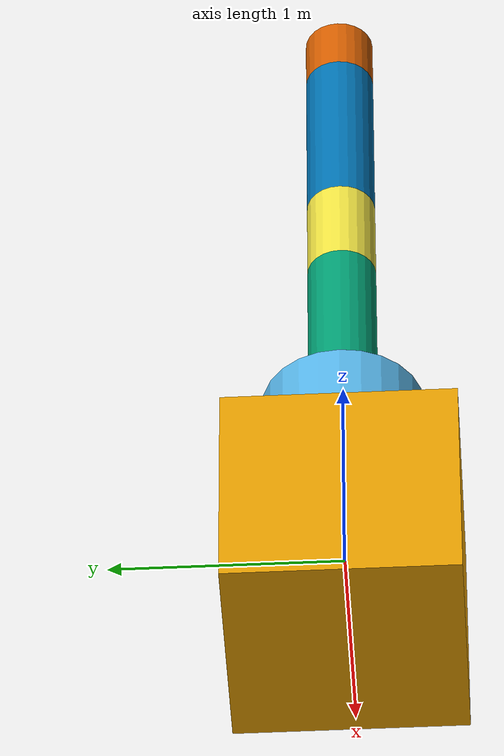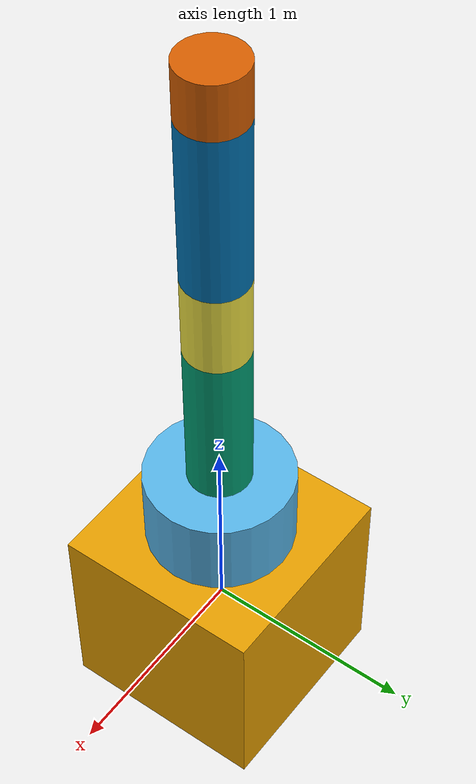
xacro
<?xml version="1.0" ?>

<robot name="mrm" xmlns:xacro="http://www.ros.org/wiki/xacro">
    <link name="base_link">
        <visual>
            <origin rpy="0 0 0" xyz="0 0 0"/>
            <geometry>
                <box size="1 1 1"/>
            </geometry>
        </visual>
    </link>

    <joint name="base_link__link1" type="revolute">
        <axis xyz="0 0 1" />
        <limit effort="1000.0" lower="-3.14" upper="3.14" velocity="0.5" />
        <origin rpy="0 0 0" xyz="0 0 0.5"/>
        <parent link="base_link"/>
        <child link="link1"/>
    </joint>

    <link name="link1">
        <visual>
            <origin rpy="0 0 0" xyz="0 0 0.2"/>
            <geometry>
                <cylinder radius="0.35" length="0.4"/>
            </geometry>
        </visual>
    </link>

    <joint name="link1__link2" type="revolute">
        <axis xyz="0 1 0" />
        <limit effort="1000.0" lower="-3.14" upper="3.14" velocity="0.5" />
        <origin rpy="0 0 0" xyz="0 0 0.4"/>
        <parent link="link1"/>
        <child link="link2"/>
    </joint>

    <link name="link2">
        <visual>
            <origin rpy="0 0 0" xyz="0 0 0.4"/>
            <geometry>
                <cylinder radius="0.15" length="0.8"/>
            </geometry>
        </visual>
    </link>
    <joint name="link2__link3" type="revolute">
        <axis xyz="0 1 0" />
        <limit effort="1000.0" lower="-3.14" upper="3.14" velocity="0.5" />
        <origin rpy="0 0 0" xyz="0 0 0.8"/>
        <parent link="link2"/>
        <child link="link3"/>
    </joint>

    <link name="link3">
        <visual>
            <origin rpy="0 0 0" xyz="0 0 0.2"/>
            <geometry>
                <cylinder radius="0.15" length="0.4"/>
            </geometry>
        </visual>
    </link>

    <joint name="link3__link4" type="revolute">
        <axis xyz="0 1 0" />
        <limit effort="1000.0" lower="-3.14" upper="3.14" velocity="0.5" />
        <origin rpy="0 0 0" xyz="0 0 0.4"/>
        <parent link="link3"/>
        <child link="link4"/>
    </joint>

    <link name="link4">
        <visual>
            <origin rpy="0 0 0" xyz="0 0 0.4"/>
            <geometry>
                <cylinder radius="0.15" length="0.8"/>
            </geometry>
        </visual>
    </link>
    <joint name="link4__link5" type="revolute">
        <axis xyz="0 0 1" />
        <limit effort="1000.0" lower="-3.14" upper="3.14" velocity="0.5"/>
        <origin rpy="0 0 0" xyz="0 0 0.8"/>
        <parent link="link4"/>
        <child link="link5"/>
    </joint>

    <link name="link5">
        <visual>
            <origin rpy="0 0 0" xyz="0 0 0.125"/>
            <geometry>
                <cylinder radius="0.15" length="0.25"/>
            </geometry>
        </visual>
    </link>

</robot>
